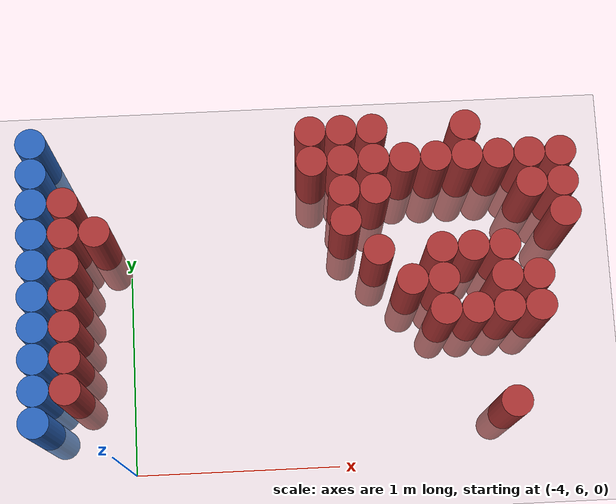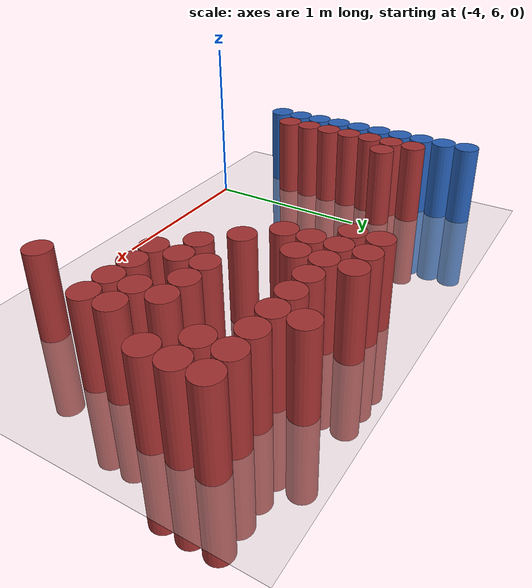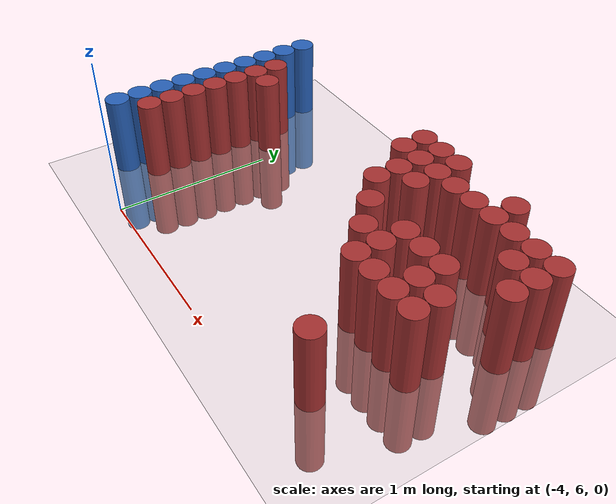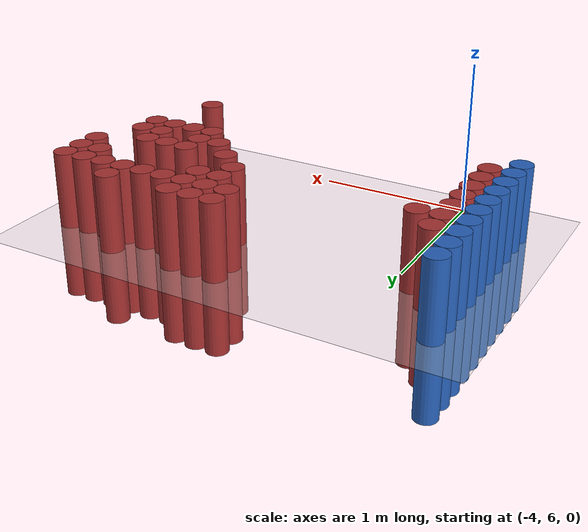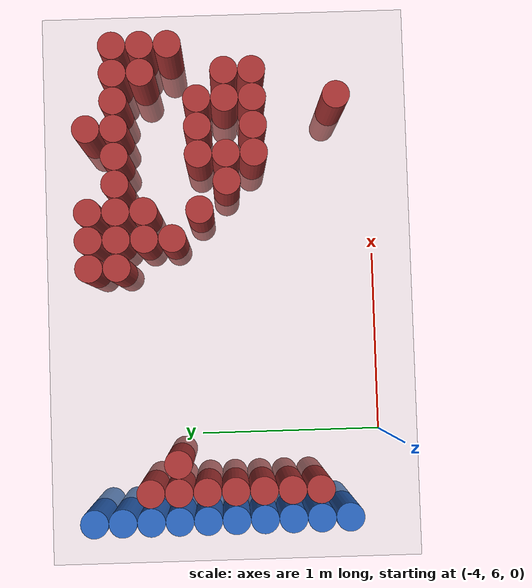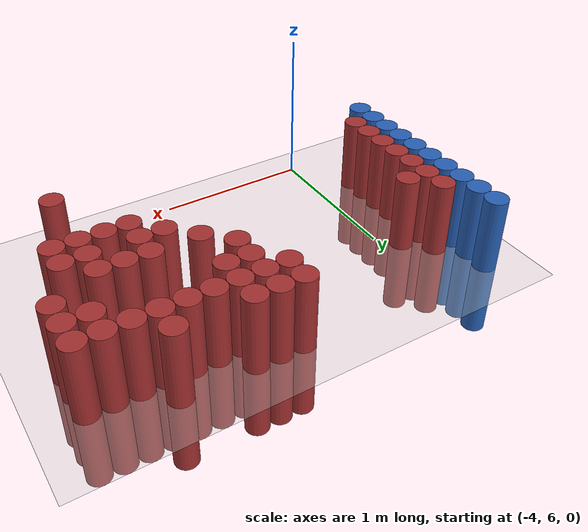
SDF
<sdf version="1.6">
 <world name="default">
  <model name="ground_plane">
   <static>1</static>
   <link name="link">
    <collision name="collision">
     <geometry><plane><normal>0 0 1</normal><size>100 100</size></plane></geometry>
     <surface><friction><ode><mu>100</mu><mu2>50</mu2></ode></friction></surface>
    </collision>
    <visual name="visual">
     <cast_shadows>0</cast_shadows>
     <geometry><plane><normal>0 0 1</normal><size>100 100</size></plane></geometry>
     <material>
      <script><uri>file://media/materials/scripts/gazebo.material</uri><name>Gazebo/Grey</name></script>
     </material>
    </visual>
   </link>
  </model>
  <model name="unit_cylinder_103">
   <static>1</static>
   <pose>-4.425000 6.225000 0.000000 0.000000 0.000000 0.000000</pose>
   <link name="link">
    <inertial>
     <mass>1</mass>
     <inertia><ixx>0.145833</ixx><ixy>0</ixy><ixz>0</ixz><iyy>0.145833</iyy><iyz>0</iyz><izz>0.125</izz></inertia>
    </inertial>
    <collision name="collision">
     <geometry><cylinder><radius>0.075000</radius><length>1</length></cylinder></geometry>
    </collision>
    <visual name="visual">
     <geometry><cylinder><radius>0.075000</radius><length>1</length></cylinder></geometry>
     <material>
      <ambient>0.152000 0.379000 0.720000 1</ambient>
      <diffuse>0.152000 0.379000 0.720000 1</diffuse>
     </material>
     <material>
      <script><name>Gazebo/Grey</name><uri>file://media/materials/scripts/gazebo.material</uri></script>
     </material>
    </visual>
   </link>
  </model>
  <model name="unit_cylinder_104">
   <static>1</static>
   <pose>-4.425000 6.375000 0.000000 0.000000 0.000000 0.000000</pose>
   <link name="link">
    <inertial>
     <mass>1</mass>
     <inertia><ixx>0.145833</ixx><ixy>0</ixy><ixz>0</ixz><iyy>0.145833</iyy><iyz>0</iyz><izz>0.125</izz></inertia>
    </inertial>
    <collision name="collision">
     <geometry><cylinder><radius>0.075000</radius><length>1</length></cylinder></geometry>
    </collision>
    <visual name="visual">
     <geometry><cylinder><radius>0.075000</radius><length>1</length></cylinder></geometry>
     <material>
      <ambient>0.152000 0.379000 0.720000 1</ambient>
      <diffuse>0.152000 0.379000 0.720000 1</diffuse>
     </material>
     <material>
      <script><name>Gazebo/Grey</name><uri>file://media/materials/scripts/gazebo.material</uri></script>
     </material>
    </visual>
   </link>
  </model>
  <model name="unit_cylinder_105">
   <static>1</static>
   <pose>-4.425000 6.525000 0.000000 0.000000 0.000000 0.000000</pose>
   <link name="link">
    <inertial>
     <mass>1</mass>
     <inertia><ixx>0.145833</ixx><ixy>0</ixy><ixz>0</ixz><iyy>0.145833</iyy><iyz>0</iyz><izz>0.125</izz></inertia>
    </inertial>
    <collision name="collision">
     <geometry><cylinder><radius>0.075000</radius><length>1</length></cylinder></geometry>
    </collision>
    <visual name="visual">
     <geometry><cylinder><radius>0.075000</radius><length>1</length></cylinder></geometry>
     <material>
      <ambient>0.152000 0.379000 0.720000 1</ambient>
      <diffuse>0.152000 0.379000 0.720000 1</diffuse>
     </material>
     <material>
      <script><name>Gazebo/Grey</name><uri>file://media/materials/scripts/gazebo.material</uri></script>
     </material>
    </visual>
   </link>
  </model>
  <model name="unit_cylinder_106">
   <static>1</static>
   <pose>-4.425000 6.675000 0.000000 0.000000 0.000000 0.000000</pose>
   <link name="link">
    <inertial>
     <mass>1</mass>
     <inertia><ixx>0.145833</ixx><ixy>0</ixy><ixz>0</ixz><iyy>0.145833</iyy><iyz>0</iyz><izz>0.125</izz></inertia>
    </inertial>
    <collision name="collision">
     <geometry><cylinder><radius>0.075000</radius><length>1</length></cylinder></geometry>
    </collision>
    <visual name="visual">
     <geometry><cylinder><radius>0.075000</radius><length>1</length></cylinder></geometry>
     <material>
      <ambient>0.152000 0.379000 0.720000 1</ambient>
      <diffuse>0.152000 0.379000 0.720000 1</diffuse>
     </material>
     <material>
      <script><name>Gazebo/Grey</name><uri>file://media/materials/scripts/gazebo.material</uri></script>
     </material>
    </visual>
   </link>
  </model>
  <model name="unit_cylinder_107">
   <static>1</static>
   <pose>-4.425000 6.825000 0.000000 0.000000 0.000000 0.000000</pose>
   <link name="link">
    <inertial>
     <mass>1</mass>
     <inertia><ixx>0.145833</ixx><ixy>0</ixy><ixz>0</ixz><iyy>0.145833</iyy><iyz>0</iyz><izz>0.125</izz></inertia>
    </inertial>
    <collision name="collision">
     <geometry><cylinder><radius>0.075000</radius><length>1</length></cylinder></geometry>
    </collision>
    <visual name="visual">
     <geometry><cylinder><radius>0.075000</radius><length>1</length></cylinder></geometry>
     <material>
      <ambient>0.152000 0.379000 0.720000 1</ambient>
      <diffuse>0.152000 0.379000 0.720000 1</diffuse>
     </material>
     <material>
      <script><name>Gazebo/Grey</name><uri>file://media/materials/scripts/gazebo.material</uri></script>
     </material>
    </visual>
   </link>
  </model>
  <model name="unit_cylinder_108">
   <static>1</static>
   <pose>-4.425000 6.975000 0.000000 0.000000 0.000000 0.000000</pose>
   <link name="link">
    <inertial>
     <mass>1</mass>
     <inertia><ixx>0.145833</ixx><ixy>0</ixy><ixz>0</ixz><iyy>0.145833</iyy><iyz>0</iyz><izz>0.125</izz></inertia>
    </inertial>
    <collision name="collision">
     <geometry><cylinder><radius>0.075000</radius><length>1</length></cylinder></geometry>
    </collision>
    <visual name="visual">
     <geometry><cylinder><radius>0.075000</radius><length>1</length></cylinder></geometry>
     <material>
      <ambient>0.152000 0.379000 0.720000 1</ambient>
      <diffuse>0.152000 0.379000 0.720000 1</diffuse>
     </material>
     <material>
      <script><name>Gazebo/Grey</name><uri>file://media/materials/scripts/gazebo.material</uri></script>
     </material>
    </visual>
   </link>
  </model>
  <model name="unit_cylinder_109">
   <static>1</static>
   <pose>-4.425000 7.125000 0.000000 0.000000 0.000000 0.000000</pose>
   <link name="link">
    <inertial>
     <mass>1</mass>
     <inertia><ixx>0.145833</ixx><ixy>0</ixy><ixz>0</ixz><iyy>0.145833</iyy><iyz>0</iyz><izz>0.125</izz></inertia>
    </inertial>
    <collision name="collision">
     <geometry><cylinder><radius>0.075000</radius><length>1</length></cylinder></geometry>
    </collision>
    <visual name="visual">
     <geometry><cylinder><radius>0.075000</radius><length>1</length></cylinder></geometry>
     <material>
      <ambient>0.152000 0.379000 0.720000 1</ambient>
      <diffuse>0.152000 0.379000 0.720000 1</diffuse>
     </material>
     <material>
      <script><name>Gazebo/Grey</name><uri>file://media/materials/scripts/gazebo.material</uri></script>
     </material>
    </visual>
   </link>
  </model>
  <model name="unit_cylinder_110">
   <static>1</static>
   <pose>-4.425000 7.275000 0.000000 0.000000 0.000000 0.000000</pose>
   <link name="link">
    <inertial>
     <mass>1</mass>
     <inertia><ixx>0.145833</ixx><ixy>0</ixy><ixz>0</ixz><iyy>0.145833</iyy><iyz>0</iyz><izz>0.125</izz></inertia>
    </inertial>
    <collision name="collision">
     <geometry><cylinder><radius>0.075000</radius><length>1</length></cylinder></geometry>
    </collision>
    <visual name="visual">
     <geometry><cylinder><radius>0.075000</radius><length>1</length></cylinder></geometry>
     <material>
      <ambient>0.152000 0.379000 0.720000 1</ambient>
      <diffuse>0.152000 0.379000 0.720000 1</diffuse>
     </material>
     <material>
      <script><name>Gazebo/Grey</name><uri>file://media/materials/scripts/gazebo.material</uri></script>
     </material>
    </visual>
   </link>
  </model>
  <model name="unit_cylinder_111">
   <static>1</static>
   <pose>-4.425000 7.425000 0.000000 0.000000 0.000000 0.000000</pose>
   <link name="link">
    <inertial>
     <mass>1</mass>
     <inertia><ixx>0.145833</ixx><ixy>0</ixy><ixz>0</ixz><iyy>0.145833</iyy><iyz>0</iyz><izz>0.125</izz></inertia>
    </inertial>
    <collision name="collision">
     <geometry><cylinder><radius>0.075000</radius><length>1</length></cylinder></geometry>
    </collision>
    <visual name="visual">
     <geometry><cylinder><radius>0.075000</radius><length>1</length></cylinder></geometry>
     <material>
      <ambient>0.152000 0.379000 0.720000 1</ambient>
      <diffuse>0.152000 0.379000 0.720000 1</diffuse>
     </material>
     <material>
      <script><name>Gazebo/Grey</name><uri>file://media/materials/scripts/gazebo.material</uri></script>
     </material>
    </visual>
   </link>
  </model>
  <model name="unit_cylinder_112">
   <static>1</static>
   <pose>-4.425000 7.575000 0.000000 0.000000 0.000000 0.000000</pose>
   <link name="link">
    <inertial>
     <mass>1</mass>
     <inertia><ixx>0.145833</ixx><ixy>0</ixy><ixz>0</ixz><iyy>0.145833</iyy><iyz>0</iyz><izz>0.125</izz></inertia>
    </inertial>
    <collision name="collision">
     <geometry><cylinder><radius>0.075000</radius><length>1</length></cylinder></geometry>
    </collision>
    <visual name="visual">
     <geometry><cylinder><radius>0.075000</radius><length>1</length></cylinder></geometry>
     <material>
      <ambient>0.152000 0.379000 0.720000 1</ambient>
      <diffuse>0.152000 0.379000 0.720000 1</diffuse>
     </material>
     <material>
      <script><name>Gazebo/Grey</name><uri>file://media/materials/scripts/gazebo.material</uri></script>
     </material>
    </visual>
   </link>
  </model>
  <model name="unit_cylinder_130">
   <static>1</static>
   <pose>-4.275000 6.375000 0.000000 0.000000 0.000000 0.000000</pose>
   <link name="link">
    <inertial>
     <mass>1</mass>
     <inertia><ixx>0.145833</ixx><ixy>0</ixy><ixz>0</ixz><iyy>0.145833</iyy><iyz>0</iyz><izz>0.125</izz></inertia>
    </inertial>
    <collision name="collision">
     <geometry><cylinder><radius>0.075000</radius><length>1</length></cylinder></geometry>
    </collision>
    <visual name="visual">
     <geometry><cylinder><radius>0.075000</radius><length>1</length></cylinder></geometry>
     <material>
      <ambient>0.648000 0.192000 0.192000 1</ambient>
      <diffuse>0.648000 0.192000 0.192000 1</diffuse>
     </material>
     <material>
      <script><name>Gazebo/Grey</name><uri>file://media/materials/scripts/gazebo.material</uri></script>
     </material>
    </visual>
   </link>
  </model>
  <model name="unit_cylinder_131">
   <static>1</static>
   <pose>-4.275000 6.525000 0.000000 0.000000 0.000000 0.000000</pose>
   <link name="link">
    <inertial>
     <mass>1</mass>
     <inertia><ixx>0.145833</ixx><ixy>0</ixy><ixz>0</ixz><iyy>0.145833</iyy><iyz>0</iyz><izz>0.125</izz></inertia>
    </inertial>
    <collision name="collision">
     <geometry><cylinder><radius>0.075000</radius><length>1</length></cylinder></geometry>
    </collision>
    <visual name="visual">
     <geometry><cylinder><radius>0.075000</radius><length>1</length></cylinder></geometry>
     <material>
      <ambient>0.648000 0.192000 0.192000 1</ambient>
      <diffuse>0.648000 0.192000 0.192000 1</diffuse>
     </material>
     <material>
      <script><name>Gazebo/Grey</name><uri>file://media/materials/scripts/gazebo.material</uri></script>
     </material>
    </visual>
   </link>
  </model>
  <model name="unit_cylinder_132">
   <static>1</static>
   <pose>-4.275000 6.675000 0.000000 0.000000 0.000000 0.000000</pose>
   <link name="link">
    <inertial>
     <mass>1</mass>
     <inertia><ixx>0.145833</ixx><ixy>0</ixy><ixz>0</ixz><iyy>0.145833</iyy><iyz>0</iyz><izz>0.125</izz></inertia>
    </inertial>
    <collision name="collision">
     <geometry><cylinder><radius>0.075000</radius><length>1</length></cylinder></geometry>
    </collision>
    <visual name="visual">
     <geometry><cylinder><radius>0.075000</radius><length>1</length></cylinder></geometry>
     <material>
      <ambient>0.648000 0.192000 0.192000 1</ambient>
      <diffuse>0.648000 0.192000 0.192000 1</diffuse>
     </material>
     <material>
      <script><name>Gazebo/Grey</name><uri>file://media/materials/scripts/gazebo.material</uri></script>
     </material>
    </visual>
   </link>
  </model>
  <model name="unit_cylinder_133">
   <static>1</static>
   <pose>-4.275000 6.825000 0.000000 0.000000 0.000000 0.000000</pose>
   <link name="link">
    <inertial>
     <mass>1</mass>
     <inertia><ixx>0.145833</ixx><ixy>0</ixy><ixz>0</ixz><iyy>0.145833</iyy><iyz>0</iyz><izz>0.125</izz></inertia>
    </inertial>
    <collision name="collision">
     <geometry><cylinder><radius>0.075000</radius><length>1</length></cylinder></geometry>
    </collision>
    <visual name="visual">
     <geometry><cylinder><radius>0.075000</radius><length>1</length></cylinder></geometry>
     <material>
      <ambient>0.648000 0.192000 0.192000 1</ambient>
      <diffuse>0.648000 0.192000 0.192000 1</diffuse>
     </material>
     <material>
      <script><name>Gazebo/Grey</name><uri>file://media/materials/scripts/gazebo.material</uri></script>
     </material>
    </visual>
   </link>
  </model>
  <model name="unit_cylinder_134">
   <static>1</static>
   <pose>-4.275000 6.975000 0.000000 0.000000 0.000000 0.000000</pose>
   <link name="link">
    <inertial>
     <mass>1</mass>
     <inertia><ixx>0.145833</ixx><ixy>0</ixy><ixz>0</ixz><iyy>0.145833</iyy><iyz>0</iyz><izz>0.125</izz></inertia>
    </inertial>
    <collision name="collision">
     <geometry><cylinder><radius>0.075000</radius><length>1</length></cylinder></geometry>
    </collision>
    <visual name="visual">
     <geometry><cylinder><radius>0.075000</radius><length>1</length></cylinder></geometry>
     <material>
      <ambient>0.648000 0.192000 0.192000 1</ambient>
      <diffuse>0.648000 0.192000 0.192000 1</diffuse>
     </material>
     <material>
      <script><name>Gazebo/Grey</name><uri>file://media/materials/scripts/gazebo.material</uri></script>
     </material>
    </visual>
   </link>
  </model>
  <model name="unit_cylinder_135">
   <static>1</static>
   <pose>-4.275000 7.125000 0.000000 0.000000 0.000000 0.000000</pose>
   <link name="link">
    <inertial>
     <mass>1</mass>
     <inertia><ixx>0.145833</ixx><ixy>0</ixy><ixz>0</ixz><iyy>0.145833</iyy><iyz>0</iyz><izz>0.125</izz></inertia>
    </inertial>
    <collision name="collision">
     <geometry><cylinder><radius>0.075000</radius><length>1</length></cylinder></geometry>
    </collision>
    <visual name="visual">
     <geometry><cylinder><radius>0.075000</radius><length>1</length></cylinder></geometry>
     <material>
      <ambient>0.648000 0.192000 0.192000 1</ambient>
      <diffuse>0.648000 0.192000 0.192000 1</diffuse>
     </material>
     <material>
      <script><name>Gazebo/Grey</name><uri>file://media/materials/scripts/gazebo.material</uri></script>
     </material>
    </visual>
   </link>
  </model>
  <model name="unit_cylinder_136">
   <static>1</static>
   <pose>-4.275000 7.275000 0.000000 0.000000 0.000000 0.000000</pose>
   <link name="link">
    <inertial>
     <mass>1</mass>
     <inertia><ixx>0.145833</ixx><ixy>0</ixy><ixz>0</ixz><iyy>0.145833</iyy><iyz>0</iyz><izz>0.125</izz></inertia>
    </inertial>
    <collision name="collision">
     <geometry><cylinder><radius>0.075000</radius><length>1</length></cylinder></geometry>
    </collision>
    <visual name="visual">
     <geometry><cylinder><radius>0.075000</radius><length>1</length></cylinder></geometry>
     <material>
      <ambient>0.648000 0.192000 0.192000 1</ambient>
      <diffuse>0.648000 0.192000 0.192000 1</diffuse>
     </material>
     <material>
      <script><name>Gazebo/Grey</name><uri>file://media/materials/scripts/gazebo.material</uri></script>
     </material>
    </visual>
   </link>
  </model>
  <model name="unit_cylinder_146">
   <static>1</static>
   <pose>-4.125000 7.125000 0.000000 0.000000 0.000000 0.000000</pose>
   <link name="link">
    <inertial>
     <mass>1</mass>
     <inertia><ixx>0.145833</ixx><ixy>0</ixy><ixz>0</ixz><iyy>0.145833</iyy><iyz>0</iyz><izz>0.125</izz></inertia>
    </inertial>
    <collision name="collision">
     <geometry><cylinder><radius>0.075000</radius><length>1</length></cylinder></geometry>
    </collision>
    <visual name="visual">
     <geometry><cylinder><radius>0.075000</radius><length>1</length></cylinder></geometry>
     <material>
      <ambient>0.648000 0.192000 0.192000 1</ambient>
      <diffuse>0.648000 0.192000 0.192000 1</diffuse>
     </material>
     <material>
      <script><name>Gazebo/Grey</name><uri>file://media/materials/scripts/gazebo.material</uri></script>
     </material>
    </visual>
   </link>
  </model>
  <model name="unit_cylinder_171">
   <static>1</static>
   <pose>-3.075000 7.425000 0.000000 0.000000 0.000000 0.000000</pose>
   <link name="link">
    <inertial>
     <mass>1</mass>
     <inertia><ixx>0.145833</ixx><ixy>0</ixy><ixz>0</ixz><iyy>0.145833</iyy><iyz>0</iyz><izz>0.125</izz></inertia>
    </inertial>
    <collision name="collision">
     <geometry><cylinder><radius>0.075000</radius><length>1</length></cylinder></geometry>
    </collision>
    <visual name="visual">
     <geometry><cylinder><radius>0.075000</radius><length>1</length></cylinder></geometry>
     <material>
      <ambient>0.648000 0.192000 0.192000 1</ambient>
      <diffuse>0.648000 0.192000 0.192000 1</diffuse>
     </material>
     <material>
      <script><name>Gazebo/Grey</name><uri>file://media/materials/scripts/gazebo.material</uri></script>
     </material>
    </visual>
   </link>
  </model>
  <model name="unit_cylinder_172">
   <static>1</static>
   <pose>-3.075000 7.575000 0.000000 0.000000 0.000000 0.000000</pose>
   <link name="link">
    <inertial>
     <mass>1</mass>
     <inertia><ixx>0.145833</ixx><ixy>0</ixy><ixz>0</ixz><iyy>0.145833</iyy><iyz>0</iyz><izz>0.125</izz></inertia>
    </inertial>
    <collision name="collision">
     <geometry><cylinder><radius>0.075000</radius><length>1</length></cylinder></geometry>
    </collision>
    <visual name="visual">
     <geometry><cylinder><radius>0.075000</radius><length>1</length></cylinder></geometry>
     <material>
      <ambient>0.648000 0.192000 0.192000 1</ambient>
      <diffuse>0.648000 0.192000 0.192000 1</diffuse>
     </material>
     <material>
      <script><name>Gazebo/Grey</name><uri>file://media/materials/scripts/gazebo.material</uri></script>
     </material>
    </visual>
   </link>
  </model>
  <model name="unit_cylinder_173">
   <static>1</static>
   <pose>-2.925000 7.125000 0.000000 0.000000 0.000000 0.000000</pose>
   <link name="link">
    <inertial>
     <mass>1</mass>
     <inertia><ixx>0.145833</ixx><ixy>0</ixy><ixz>0</ixz><iyy>0.145833</iyy><iyz>0</iyz><izz>0.125</izz></inertia>
    </inertial>
    <collision name="collision">
     <geometry><cylinder><radius>0.075000</radius><length>1</length></cylinder></geometry>
    </collision>
    <visual name="visual">
     <geometry><cylinder><radius>0.075000</radius><length>1</length></cylinder></geometry>
     <material>
      <ambient>0.648000 0.192000 0.192000 1</ambient>
      <diffuse>0.648000 0.192000 0.192000 1</diffuse>
     </material>
     <material>
      <script><name>Gazebo/Grey</name><uri>file://media/materials/scripts/gazebo.material</uri></script>
     </material>
    </visual>
   </link>
  </model>
  <model name="unit_cylinder_174">
   <static>1</static>
   <pose>-2.925000 7.275000 0.000000 0.000000 0.000000 0.000000</pose>
   <link name="link">
    <inertial>
     <mass>1</mass>
     <inertia><ixx>0.145833</ixx><ixy>0</ixy><ixz>0</ixz><iyy>0.145833</iyy><iyz>0</iyz><izz>0.125</izz></inertia>
    </inertial>
    <collision name="collision">
     <geometry><cylinder><radius>0.075000</radius><length>1</length></cylinder></geometry>
    </collision>
    <visual name="visual">
     <geometry><cylinder><radius>0.075000</radius><length>1</length></cylinder></geometry>
     <material>
      <ambient>0.648000 0.192000 0.192000 1</ambient>
      <diffuse>0.648000 0.192000 0.192000 1</diffuse>
     </material>
     <material>
      <script><name>Gazebo/Grey</name><uri>file://media/materials/scripts/gazebo.material</uri></script>
     </material>
    </visual>
   </link>
  </model>
  <model name="unit_cylinder_175">
   <static>1</static>
   <pose>-2.925000 7.425000 0.000000 0.000000 0.000000 0.000000</pose>
   <link name="link">
    <inertial>
     <mass>1</mass>
     <inertia><ixx>0.145833</ixx><ixy>0</ixy><ixz>0</ixz><iyy>0.145833</iyy><iyz>0</iyz><izz>0.125</izz></inertia>
    </inertial>
    <collision name="collision">
     <geometry><cylinder><radius>0.075000</radius><length>1</length></cylinder></geometry>
    </collision>
    <visual name="visual">
     <geometry><cylinder><radius>0.075000</radius><length>1</length></cylinder></geometry>
     <material>
      <ambient>0.648000 0.192000 0.192000 1</ambient>
      <diffuse>0.648000 0.192000 0.192000 1</diffuse>
     </material>
     <material>
      <script><name>Gazebo/Grey</name><uri>file://media/materials/scripts/gazebo.material</uri></script>
     </material>
    </visual>
   </link>
  </model>
  <model name="unit_cylinder_176">
   <static>1</static>
   <pose>-2.925000 7.575000 0.000000 0.000000 0.000000 0.000000</pose>
   <link name="link">
    <inertial>
     <mass>1</mass>
     <inertia><ixx>0.145833</ixx><ixy>0</ixy><ixz>0</ixz><iyy>0.145833</iyy><iyz>0</iyz><izz>0.125</izz></inertia>
    </inertial>
    <collision name="collision">
     <geometry><cylinder><radius>0.075000</radius><length>1</length></cylinder></geometry>
    </collision>
    <visual name="visual">
     <geometry><cylinder><radius>0.075000</radius><length>1</length></cylinder></geometry>
     <material>
      <ambient>0.648000 0.192000 0.192000 1</ambient>
      <diffuse>0.648000 0.192000 0.192000 1</diffuse>
     </material>
     <material>
      <script><name>Gazebo/Grey</name><uri>file://media/materials/scripts/gazebo.material</uri></script>
     </material>
    </visual>
   </link>
  </model>
  <model name="unit_cylinder_178">
   <static>1</static>
   <pose>-2.775000 6.975000 0.000000 0.000000 0.000000 0.000000</pose>
   <link name="link">
    <inertial>
     <mass>1</mass>
     <inertia><ixx>0.145833</ixx><ixy>0</ixy><ixz>0</ixz><iyy>0.145833</iyy><iyz>0</iyz><izz>0.125</izz></inertia>
    </inertial>
    <collision name="collision">
     <geometry><cylinder><radius>0.075000</radius><length>1</length></cylinder></geometry>
    </collision>
    <visual name="visual">
     <geometry><cylinder><radius>0.075000</radius><length>1</length></cylinder></geometry>
     <material>
      <ambient>0.648000 0.192000 0.192000 1</ambient>
      <diffuse>0.648000 0.192000 0.192000 1</diffuse>
     </material>
     <material>
      <script><name>Gazebo/Grey</name><uri>file://media/materials/scripts/gazebo.material</uri></script>
     </material>
    </visual>
   </link>
  </model>
  <model name="unit_cylinder_179">
   <static>1</static>
   <pose>-2.775000 7.275000 0.000000 0.000000 0.000000 0.000000</pose>
   <link name="link">
    <inertial>
     <mass>1</mass>
     <inertia><ixx>0.145833</ixx><ixy>0</ixy><ixz>0</ixz><iyy>0.145833</iyy><iyz>0</iyz><izz>0.125</izz></inertia>
    </inertial>
    <collision name="collision">
     <geometry><cylinder><radius>0.075000</radius><length>1</length></cylinder></geometry>
    </collision>
    <visual name="visual">
     <geometry><cylinder><radius>0.075000</radius><length>1</length></cylinder></geometry>
     <material>
      <ambient>0.648000 0.192000 0.192000 1</ambient>
      <diffuse>0.648000 0.192000 0.192000 1</diffuse>
     </material>
     <material>
      <script><name>Gazebo/Grey</name><uri>file://media/materials/scripts/gazebo.material</uri></script>
     </material>
    </visual>
   </link>
  </model>
  <model name="unit_cylinder_180">
   <static>1</static>
   <pose>-2.775000 7.425000 0.000000 0.000000 0.000000 0.000000</pose>
   <link name="link">
    <inertial>
     <mass>1</mass>
     <inertia><ixx>0.145833</ixx><ixy>0</ixy><ixz>0</ixz><iyy>0.145833</iyy><iyz>0</iyz><izz>0.125</izz></inertia>
    </inertial>
    <collision name="collision">
     <geometry><cylinder><radius>0.075000</radius><length>1</length></cylinder></geometry>
    </collision>
    <visual name="visual">
     <geometry><cylinder><radius>0.075000</radius><length>1</length></cylinder></geometry>
     <material>
      <ambient>0.648000 0.192000 0.192000 1</ambient>
      <diffuse>0.648000 0.192000 0.192000 1</diffuse>
     </material>
     <material>
      <script><name>Gazebo/Grey</name><uri>file://media/materials/scripts/gazebo.material</uri></script>
     </material>
    </visual>
   </link>
  </model>
  <model name="unit_cylinder_181">
   <static>1</static>
   <pose>-2.775000 7.575000 0.000000 0.000000 0.000000 0.000000</pose>
   <link name="link">
    <inertial>
     <mass>1</mass>
     <inertia><ixx>0.145833</ixx><ixy>0</ixy><ixz>0</ixz><iyy>0.145833</iyy><iyz>0</iyz><izz>0.125</izz></inertia>
    </inertial>
    <collision name="collision">
     <geometry><cylinder><radius>0.075000</radius><length>1</length></cylinder></geometry>
    </collision>
    <visual name="visual">
     <geometry><cylinder><radius>0.075000</radius><length>1</length></cylinder></geometry>
     <material>
      <ambient>0.648000 0.192000 0.192000 1</ambient>
      <diffuse>0.648000 0.192000 0.192000 1</diffuse>
     </material>
     <material>
      <script><name>Gazebo/Grey</name><uri>file://media/materials/scripts/gazebo.material</uri></script>
     </material>
    </visual>
   </link>
  </model>
  <model name="unit_cylinder_183">
   <static>1</static>
   <pose>-2.625000 6.825000 0.000000 0.000000 0.000000 0.000000</pose>
   <link name="link">
    <inertial>
     <mass>1</mass>
     <inertia><ixx>0.145833</ixx><ixy>0</ixy><ixz>0</ixz><iyy>0.145833</iyy><iyz>0</iyz><izz>0.125</izz></inertia>
    </inertial>
    <collision name="collision">
     <geometry><cylinder><radius>0.075000</radius><length>1</length></cylinder></geometry>
    </collision>
    <visual name="visual">
     <geometry><cylinder><radius>0.075000</radius><length>1</length></cylinder></geometry>
     <material>
      <ambient>0.648000 0.192000 0.192000 1</ambient>
      <diffuse>0.648000 0.192000 0.192000 1</diffuse>
     </material>
     <material>
      <script><name>Gazebo/Grey</name><uri>file://media/materials/scripts/gazebo.material</uri></script>
     </material>
    </visual>
   </link>
  </model>
  <model name="unit_cylinder_184">
   <static>1</static>
   <pose>-2.625000 7.425000 0.000000 0.000000 0.000000 0.000000</pose>
   <link name="link">
    <inertial>
     <mass>1</mass>
     <inertia><ixx>0.145833</ixx><ixy>0</ixy><ixz>0</ixz><iyy>0.145833</iyy><iyz>0</iyz><izz>0.125</izz></inertia>
    </inertial>
    <collision name="collision">
     <geometry><cylinder><radius>0.075000</radius><length>1</length></cylinder></geometry>
    </collision>
    <visual name="visual">
     <geometry><cylinder><radius>0.075000</radius><length>1</length></cylinder></geometry>
     <material>
      <ambient>0.648000 0.192000 0.192000 1</ambient>
      <diffuse>0.648000 0.192000 0.192000 1</diffuse>
     </material>
     <material>
      <script><name>Gazebo/Grey</name><uri>file://media/materials/scripts/gazebo.material</uri></script>
     </material>
    </visual>
   </link>
  </model>
  <model name="unit_cylinder_187">
   <static>1</static>
   <pose>-2.475000 6.675000 0.000000 0.000000 0.000000 0.000000</pose>
   <link name="link">
    <inertial>
     <mass>1</mass>
     <inertia><ixx>0.145833</ixx><ixy>0</ixy><ixz>0</ixz><iyy>0.145833</iyy><iyz>0</iyz><izz>0.125</izz></inertia>
    </inertial>
    <collision name="collision">
     <geometry><cylinder><radius>0.075000</radius><length>1</length></cylinder></geometry>
    </collision>
    <visual name="visual">
     <geometry><cylinder><radius>0.075000</radius><length>1</length></cylinder></geometry>
     <material>
      <ambient>0.648000 0.192000 0.192000 1</ambient>
      <diffuse>0.648000 0.192000 0.192000 1</diffuse>
     </material>
     <material>
      <script><name>Gazebo/Grey</name><uri>file://media/materials/scripts/gazebo.material</uri></script>
     </material>
    </visual>
   </link>
  </model>
  <model name="unit_cylinder_188">
   <static>1</static>
   <pose>-2.475000 6.825000 0.000000 0.000000 0.000000 0.000000</pose>
   <link name="link">
    <inertial>
     <mass>1</mass>
     <inertia><ixx>0.145833</ixx><ixy>0</ixy><ixz>0</ixz><iyy>0.145833</iyy><iyz>0</iyz><izz>0.125</izz></inertia>
    </inertial>
    <collision name="collision">
     <geometry><cylinder><radius>0.075000</radius><length>1</length></cylinder></geometry>
    </collision>
    <visual name="visual">
     <geometry><cylinder><radius>0.075000</radius><length>1</length></cylinder></geometry>
     <material>
      <ambient>0.648000 0.192000 0.192000 1</ambient>
      <diffuse>0.648000 0.192000 0.192000 1</diffuse>
     </material>
     <material>
      <script><name>Gazebo/Grey</name><uri>file://media/materials/scripts/gazebo.material</uri></script>
     </material>
    </visual>
   </link>
  </model>
  <model name="unit_cylinder_189">
   <static>1</static>
   <pose>-2.475000 6.975000 0.000000 0.000000 0.000000 0.000000</pose>
   <link name="link">
    <inertial>
     <mass>1</mass>
     <inertia><ixx>0.145833</ixx><ixy>0</ixy><ixz>0</ixz><iyy>0.145833</iyy><iyz>0</iyz><izz>0.125</izz></inertia>
    </inertial>
    <collision name="collision">
     <geometry><cylinder><radius>0.075000</radius><length>1</length></cylinder></geometry>
    </collision>
    <visual name="visual">
     <geometry><cylinder><radius>0.075000</radius><length>1</length></cylinder></geometry>
     <material>
      <ambient>0.648000 0.192000 0.192000 1</ambient>
      <diffuse>0.648000 0.192000 0.192000 1</diffuse>
     </material>
     <material>
      <script><name>Gazebo/Grey</name><uri>file://media/materials/scripts/gazebo.material</uri></script>
     </material>
    </visual>
   </link>
  </model>
  <model name="unit_cylinder_190">
   <static>1</static>
   <pose>-2.475000 7.425000 0.000000 0.000000 0.000000 0.000000</pose>
   <link name="link">
    <inertial>
     <mass>1</mass>
     <inertia><ixx>0.145833</ixx><ixy>0</ixy><ixz>0</ixz><iyy>0.145833</iyy><iyz>0</iyz><izz>0.125</izz></inertia>
    </inertial>
    <collision name="collision">
     <geometry><cylinder><radius>0.075000</radius><length>1</length></cylinder></geometry>
    </collision>
    <visual name="visual">
     <geometry><cylinder><radius>0.075000</radius><length>1</length></cylinder></geometry>
     <material>
      <ambient>0.648000 0.192000 0.192000 1</ambient>
      <diffuse>0.648000 0.192000 0.192000 1</diffuse>
     </material>
     <material>
      <script><name>Gazebo/Grey</name><uri>file://media/materials/scripts/gazebo.material</uri></script>
     </material>
    </visual>
   </link>
  </model>
  <model name="unit_cylinder_195">
   <static>1</static>
   <pose>-2.325000 6.675000 0.000000 0.000000 0.000000 0.000000</pose>
   <link name="link">
    <inertial>
     <mass>1</mass>
     <inertia><ixx>0.145833</ixx><ixy>0</ixy><ixz>0</ixz><iyy>0.145833</iyy><iyz>0</iyz><izz>0.125</izz></inertia>
    </inertial>
    <collision name="collision">
     <geometry><cylinder><radius>0.075000</radius><length>1</length></cylinder></geometry>
    </collision>
    <visual name="visual">
     <geometry><cylinder><radius>0.075000</radius><length>1</length></cylinder></geometry>
     <material>
      <ambient>0.648000 0.192000 0.192000 1</ambient>
      <diffuse>0.648000 0.192000 0.192000 1</diffuse>
     </material>
     <material>
      <script><name>Gazebo/Grey</name><uri>file://media/materials/scripts/gazebo.material</uri></script>
     </material>
    </visual>
   </link>
  </model>
  <model name="unit_cylinder_196">
   <static>1</static>
   <pose>-2.325000 6.975000 0.000000 0.000000 0.000000 0.000000</pose>
   <link name="link">
    <inertial>
     <mass>1</mass>
     <inertia><ixx>0.145833</ixx><ixy>0</ixy><ixz>0</ixz><iyy>0.145833</iyy><iyz>0</iyz><izz>0.125</izz></inertia>
    </inertial>
    <collision name="collision">
     <geometry><cylinder><radius>0.075000</radius><length>1</length></cylinder></geometry>
    </collision>
    <visual name="visual">
     <geometry><cylinder><radius>0.075000</radius><length>1</length></cylinder></geometry>
     <material>
      <ambient>0.648000 0.192000 0.192000 1</ambient>
      <diffuse>0.648000 0.192000 0.192000 1</diffuse>
     </material>
     <material>
      <script><name>Gazebo/Grey</name><uri>file://media/materials/scripts/gazebo.material</uri></script>
     </material>
    </visual>
   </link>
  </model>
  <model name="unit_cylinder_197">
   <static>1</static>
   <pose>-2.325000 7.425000 0.000000 0.000000 0.000000 0.000000</pose>
   <link name="link">
    <inertial>
     <mass>1</mass>
     <inertia><ixx>0.145833</ixx><ixy>0</ixy><ixz>0</ixz><iyy>0.145833</iyy><iyz>0</iyz><izz>0.125</izz></inertia>
    </inertial>
    <collision name="collision">
     <geometry><cylinder><radius>0.075000</radius><length>1</length></cylinder></geometry>
    </collision>
    <visual name="visual">
     <geometry><cylinder><radius>0.075000</radius><length>1</length></cylinder></geometry>
     <material>
      <ambient>0.648000 0.192000 0.192000 1</ambient>
      <diffuse>0.648000 0.192000 0.192000 1</diffuse>
     </material>
     <material>
      <script><name>Gazebo/Grey</name><uri>file://media/materials/scripts/gazebo.material</uri></script>
     </material>
    </visual>
   </link>
  </model>
  <model name="unit_cylinder_198">
   <static>1</static>
   <pose>-2.325000 7.575000 0.000000 0.000000 0.000000 0.000000</pose>
   <link name="link">
    <inertial>
     <mass>1</mass>
     <inertia><ixx>0.145833</ixx><ixy>0</ixy><ixz>0</ixz><iyy>0.145833</iyy><iyz>0</iyz><izz>0.125</izz></inertia>
    </inertial>
    <collision name="collision">
     <geometry><cylinder><radius>0.075000</radius><length>1</length></cylinder></geometry>
    </collision>
    <visual name="visual">
     <geometry><cylinder><radius>0.075000</radius><length>1</length></cylinder></geometry>
     <material>
      <ambient>0.648000 0.192000 0.192000 1</ambient>
      <diffuse>0.648000 0.192000 0.192000 1</diffuse>
     </material>
     <material>
      <script><name>Gazebo/Grey</name><uri>file://media/materials/scripts/gazebo.material</uri></script>
     </material>
    </visual>
   </link>
  </model>
  <model name="unit_cylinder_203">
   <static>1</static>
   <pose>-2.175000 6.225000 0.000000 0.000000 0.000000 0.000000</pose>
   <link name="link">
    <inertial>
     <mass>1</mass>
     <inertia><ixx>0.145833</ixx><ixy>0</ixy><ixz>0</ixz><iyy>0.145833</iyy><iyz>0</iyz><izz>0.125</izz></inertia>
    </inertial>
    <collision name="collision">
     <geometry><cylinder><radius>0.075000</radius><length>1</length></cylinder></geometry>
    </collision>
    <visual name="visual">
     <geometry><cylinder><radius>0.075000</radius><length>1</length></cylinder></geometry>
     <material>
      <ambient>0.648000 0.192000 0.192000 1</ambient>
      <diffuse>0.648000 0.192000 0.192000 1</diffuse>
     </material>
     <material>
      <script><name>Gazebo/Grey</name><uri>file://media/materials/scripts/gazebo.material</uri></script>
     </material>
    </visual>
   </link>
  </model>
  <model name="unit_cylinder_204">
   <static>1</static>
   <pose>-2.175000 6.675000 0.000000 0.000000 0.000000 0.000000</pose>
   <link name="link">
    <inertial>
     <mass>1</mass>
     <inertia><ixx>0.145833</ixx><ixy>0</ixy><ixz>0</ixz><iyy>0.145833</iyy><iyz>0</iyz><izz>0.125</izz></inertia>
    </inertial>
    <collision name="collision">
     <geometry><cylinder><radius>0.075000</radius><length>1</length></cylinder></geometry>
    </collision>
    <visual name="visual">
     <geometry><cylinder><radius>0.075000</radius><length>1</length></cylinder></geometry>
     <material>
      <ambient>0.648000 0.192000 0.192000 1</ambient>
      <diffuse>0.648000 0.192000 0.192000 1</diffuse>
     </material>
     <material>
      <script><name>Gazebo/Grey</name><uri>file://media/materials/scripts/gazebo.material</uri></script>
     </material>
    </visual>
   </link>
  </model>
  <model name="unit_cylinder_205">
   <static>1</static>
   <pose>-2.175000 6.825000 0.000000 0.000000 0.000000 0.000000</pose>
   <link name="link">
    <inertial>
     <mass>1</mass>
     <inertia><ixx>0.145833</ixx><ixy>0</ixy><ixz>0</ixz><iyy>0.145833</iyy><iyz>0</iyz><izz>0.125</izz></inertia>
    </inertial>
    <collision name="collision">
     <geometry><cylinder><radius>0.075000</radius><length>1</length></cylinder></geometry>
    </collision>
    <visual name="visual">
     <geometry><cylinder><radius>0.075000</radius><length>1</length></cylinder></geometry>
     <material>
      <ambient>0.648000 0.192000 0.192000 1</ambient>
      <diffuse>0.648000 0.192000 0.192000 1</diffuse>
     </material>
     <material>
      <script><name>Gazebo/Grey</name><uri>file://media/materials/scripts/gazebo.material</uri></script>
     </material>
    </visual>
   </link>
  </model>
  <model name="unit_cylinder_206">
   <static>1</static>
   <pose>-2.175000 6.975000 0.000000 0.000000 0.000000 0.000000</pose>
   <link name="link">
    <inertial>
     <mass>1</mass>
     <inertia><ixx>0.145833</ixx><ixy>0</ixy><ixz>0</ixz><iyy>0.145833</iyy><iyz>0</iyz><izz>0.125</izz></inertia>
    </inertial>
    <collision name="collision">
     <geometry><cylinder><radius>0.075000</radius><length>1</length></cylinder></geometry>
    </collision>
    <visual name="visual">
     <geometry><cylinder><radius>0.075000</radius><length>1</length></cylinder></geometry>
     <material>
      <ambient>0.648000 0.192000 0.192000 1</ambient>
      <diffuse>0.648000 0.192000 0.192000 1</diffuse>
     </material>
     <material>
      <script><name>Gazebo/Grey</name><uri>file://media/materials/scripts/gazebo.material</uri></script>
     </material>
    </visual>
   </link>
  </model>
  <model name="unit_cylinder_207">
   <static>1</static>
   <pose>-2.175000 7.425000 0.000000 0.000000 0.000000 0.000000</pose>
   <link name="link">
    <inertial>
     <mass>1</mass>
     <inertia><ixx>0.145833</ixx><ixy>0</ixy><ixz>0</ixz><iyy>0.145833</iyy><iyz>0</iyz><izz>0.125</izz></inertia>
    </inertial>
    <collision name="collision">
     <geometry><cylinder><radius>0.075000</radius><length>1</length></cylinder></geometry>
    </collision>
    <visual name="visual">
     <geometry><cylinder><radius>0.075000</radius><length>1</length></cylinder></geometry>
     <material>
      <ambient>0.648000 0.192000 0.192000 1</ambient>
      <diffuse>0.648000 0.192000 0.192000 1</diffuse>
     </material>
     <material>
      <script><name>Gazebo/Grey</name><uri>file://media/materials/scripts/gazebo.material</uri></script>
     </material>
    </visual>
   </link>
  </model>
  <model name="unit_cylinder_210">
   <static>1</static>
   <pose>-2.025000 6.675000 0.000000 0.000000 0.000000 0.000000</pose>
   <link name="link">
    <inertial>
     <mass>1</mass>
     <inertia><ixx>0.145833</ixx><ixy>0</ixy><ixz>0</ixz><iyy>0.145833</iyy><iyz>0</iyz><izz>0.125</izz></inertia>
    </inertial>
    <collision name="collision">
     <geometry><cylinder><radius>0.075000</radius><length>1</length></cylinder></geometry>
    </collision>
    <visual name="visual">
     <geometry><cylinder><radius>0.075000</radius><length>1</length></cylinder></geometry>
     <material>
      <ambient>0.648000 0.192000 0.192000 1</ambient>
      <diffuse>0.648000 0.192000 0.192000 1</diffuse>
     </material>
     <material>
      <script><name>Gazebo/Grey</name><uri>file://media/materials/scripts/gazebo.material</uri></script>
     </material>
    </visual>
   </link>
  </model>
  <model name="unit_cylinder_211">
   <static>1</static>
   <pose>-2.025000 6.825000 0.000000 0.000000 0.000000 0.000000</pose>
   <link name="link">
    <inertial>
     <mass>1</mass>
     <inertia><ixx>0.145833</ixx><ixy>0</ixy><ixz>0</ixz><iyy>0.145833</iyy><iyz>0</iyz><izz>0.125</izz></inertia>
    </inertial>
    <collision name="collision">
     <geometry><cylinder><radius>0.075000</radius><length>1</length></cylinder></geometry>
    </collision>
    <visual name="visual">
     <geometry><cylinder><radius>0.075000</radius><length>1</length></cylinder></geometry>
     <material>
      <ambient>0.648000 0.192000 0.192000 1</ambient>
      <diffuse>0.648000 0.192000 0.192000 1</diffuse>
     </material>
     <material>
      <script><name>Gazebo/Grey</name><uri>file://media/materials/scripts/gazebo.material</uri></script>
     </material>
    </visual>
   </link>
  </model>
  <model name="unit_cylinder_212">
   <static>1</static>
   <pose>-2.025000 7.275000 0.000000 0.000000 0.000000 0.000000</pose>
   <link name="link">
    <inertial>
     <mass>1</mass>
     <inertia><ixx>0.145833</ixx><ixy>0</ixy><ixz>0</ixz><iyy>0.145833</iyy><iyz>0</iyz><izz>0.125</izz></inertia>
    </inertial>
    <collision name="collision">
     <geometry><cylinder><radius>0.075000</radius><length>1</length></cylinder></geometry>
    </collision>
    <visual name="visual">
     <geometry><cylinder><radius>0.075000</radius><length>1</length></cylinder></geometry>
     <material>
      <ambient>0.648000 0.192000 0.192000 1</ambient>
      <diffuse>0.648000 0.192000 0.192000 1</diffuse>
     </material>
     <material>
      <script><name>Gazebo/Grey</name><uri>file://media/materials/scripts/gazebo.material</uri></script>
     </material>
    </visual>
   </link>
  </model>
  <model name="unit_cylinder_213">
   <static>1</static>
   <pose>-2.025000 7.425000 0.000000 0.000000 0.000000 0.000000</pose>
   <link name="link">
    <inertial>
     <mass>1</mass>
     <inertia><ixx>0.145833</ixx><ixy>0</ixy><ixz>0</ixz><iyy>0.145833</iyy><iyz>0</iyz><izz>0.125</izz></inertia>
    </inertial>
    <collision name="collision">
     <geometry><cylinder><radius>0.075000</radius><length>1</length></cylinder></geometry>
    </collision>
    <visual name="visual">
     <geometry><cylinder><radius>0.075000</radius><length>1</length></cylinder></geometry>
     <material>
      <ambient>0.648000 0.192000 0.192000 1</ambient>
      <diffuse>0.648000 0.192000 0.192000 1</diffuse>
     </material>
     <material>
      <script><name>Gazebo/Grey</name><uri>file://media/materials/scripts/gazebo.material</uri></script>
     </material>
    </visual>
   </link>
  </model>
  <model name="unit_cylinder_215">
   <static>1</static>
   <pose>-1.875000 7.125000 0.000000 0.000000 0.000000 0.000000</pose>
   <link name="link">
    <inertial>
     <mass>1</mass>
     <inertia><ixx>0.145833</ixx><ixy>0</ixy><ixz>0</ixz><iyy>0.145833</iyy><iyz>0</iyz><izz>0.125</izz></inertia>
    </inertial>
    <collision name="collision">
     <geometry><cylinder><radius>0.075000</radius><length>1</length></cylinder></geometry>
    </collision>
    <visual name="visual">
     <geometry><cylinder><radius>0.075000</radius><length>1</length></cylinder></geometry>
     <material>
      <ambient>0.648000 0.192000 0.192000 1</ambient>
      <diffuse>0.648000 0.192000 0.192000 1</diffuse>
     </material>
     <material>
      <script><name>Gazebo/Grey</name><uri>file://media/materials/scripts/gazebo.material</uri></script>
     </material>
    </visual>
   </link>
  </model>
  <model name="unit_cylinder_216">
   <static>1</static>
   <pose>-1.875000 7.275000 0.000000 0.000000 0.000000 0.000000</pose>
   <link name="link">
    <inertial>
     <mass>1</mass>
     <inertia><ixx>0.145833</ixx><ixy>0</ixy><ixz>0</ixz><iyy>0.145833</iyy><iyz>0</iyz><izz>0.125</izz></inertia>
    </inertial>
    <collision name="collision">
     <geometry><cylinder><radius>0.075000</radius><length>1</length></cylinder></geometry>
    </collision>
    <visual name="visual">
     <geometry><cylinder><radius>0.075000</radius><length>1</length></cylinder></geometry>
     <material>
      <ambient>0.648000 0.192000 0.192000 1</ambient>
      <diffuse>0.648000 0.192000 0.192000 1</diffuse>
     </material>
     <material>
      <script><name>Gazebo/Grey</name><uri>file://media/materials/scripts/gazebo.material</uri></script>
     </material>
    </visual>
   </link>
  </model>
  <model name="unit_cylinder_217">
   <static>1</static>
   <pose>-1.875000 7.425000 0.000000 0.000000 0.000000 0.000000</pose>
   <link name="link">
    <inertial>
     <mass>1</mass>
     <inertia><ixx>0.145833</ixx><ixy>0</ixy><ixz>0</ixz><iyy>0.145833</iyy><iyz>0</iyz><izz>0.125</izz></inertia>
    </inertial>
    <collision name="collision">
     <geometry><cylinder><radius>0.075000</radius><length>1</length></cylinder></geometry>
    </collision>
    <visual name="visual">
     <geometry><cylinder><radius>0.075000</radius><length>1</length></cylinder></geometry>
     <material>
      <ambient>0.648000 0.192000 0.192000 1</ambient>
      <diffuse>0.648000 0.192000 0.192000 1</diffuse>
     </material>
     <material>
      <script><name>Gazebo/Grey</name><uri>file://media/materials/scripts/gazebo.material</uri></script>
     </material>
    </visual>
   </link>
  </model>
 </world>
</sdf>
